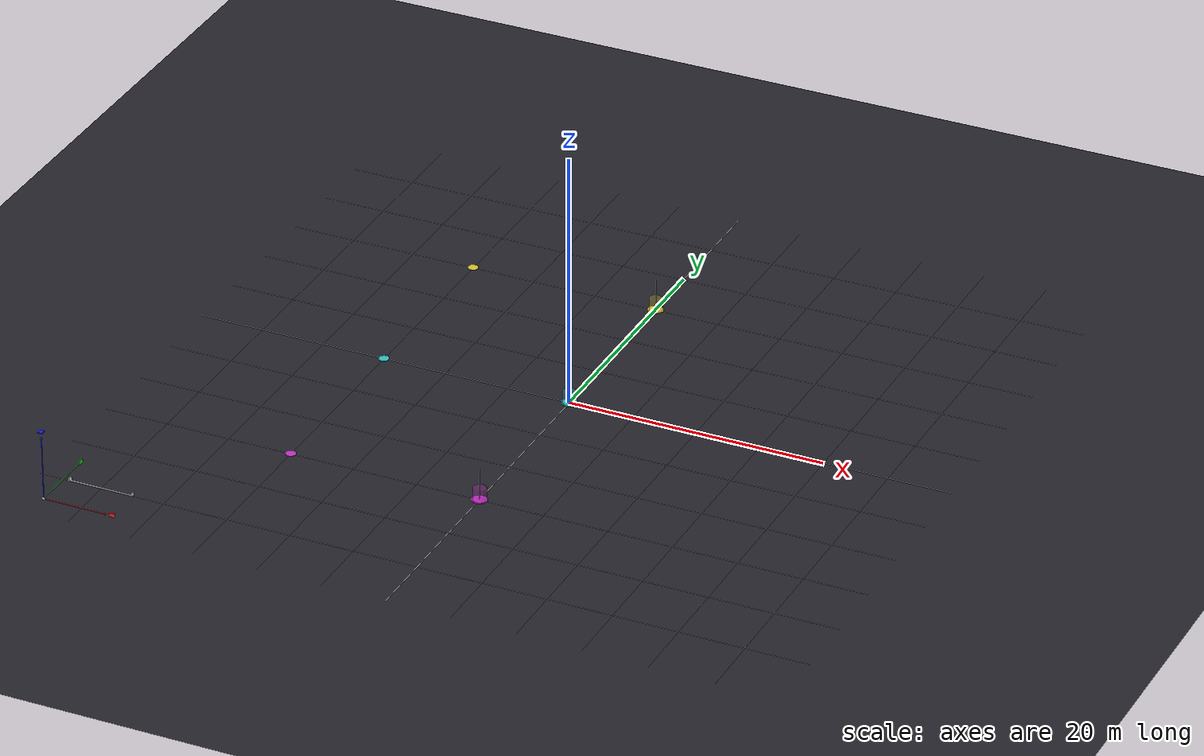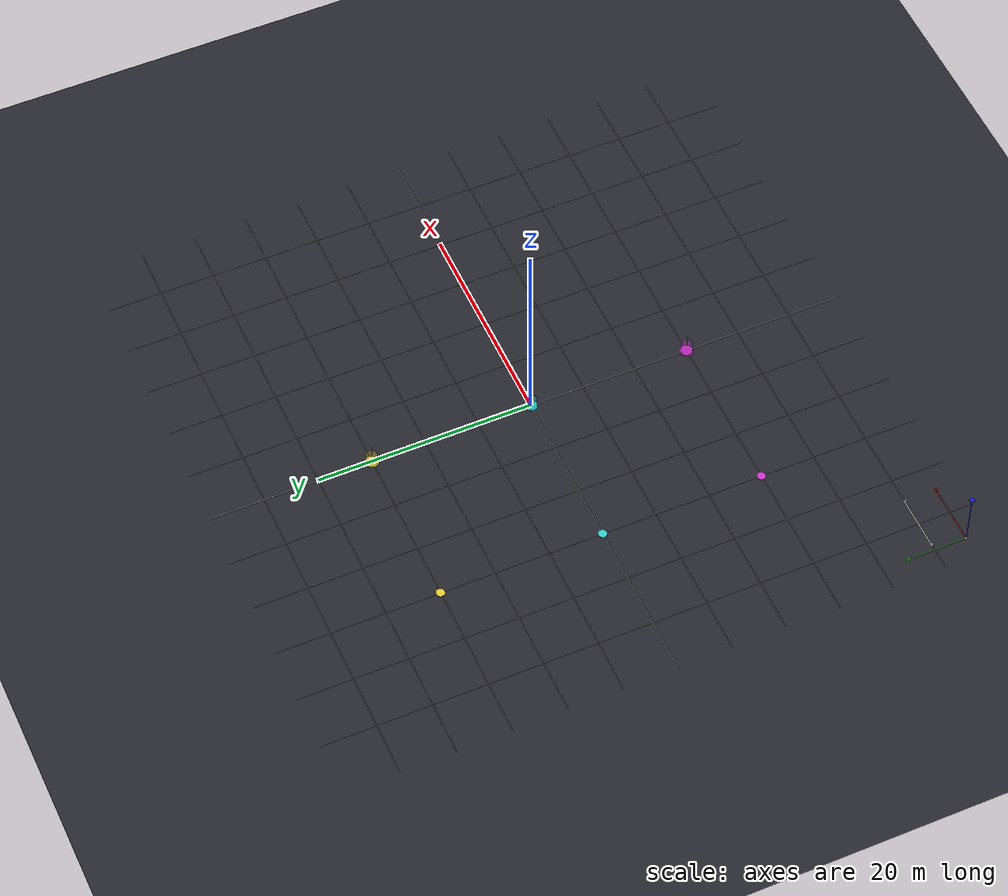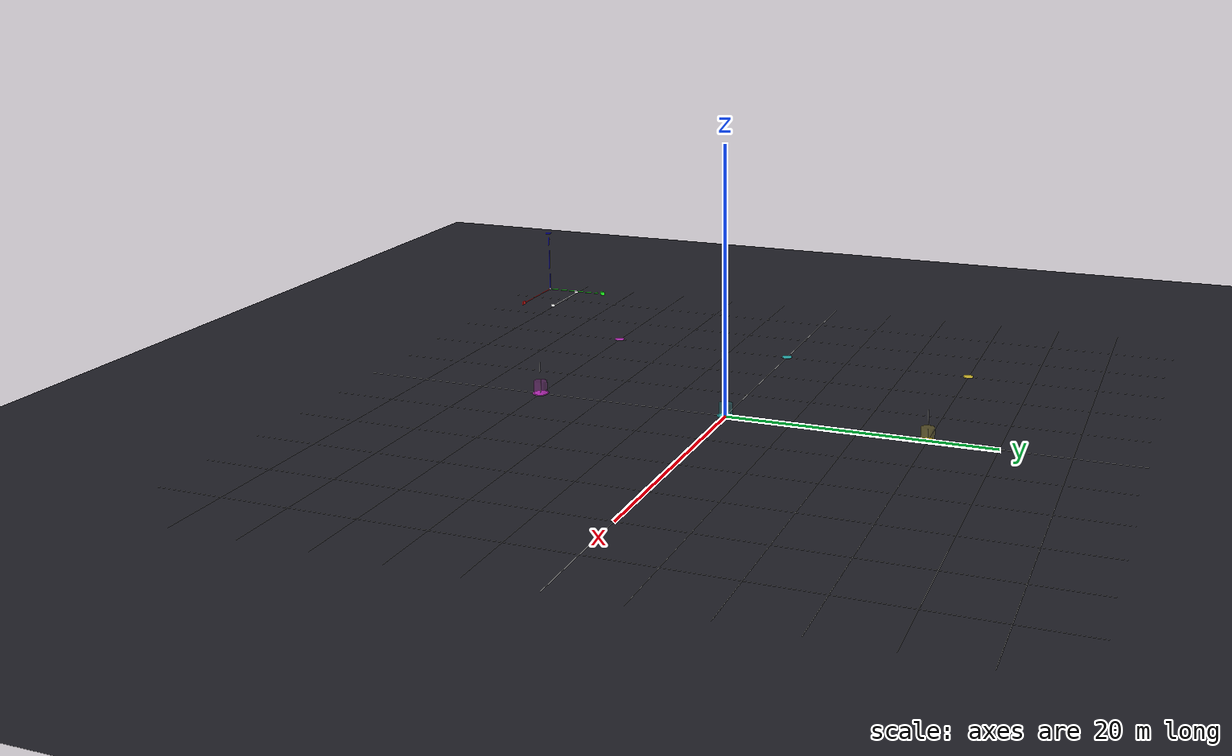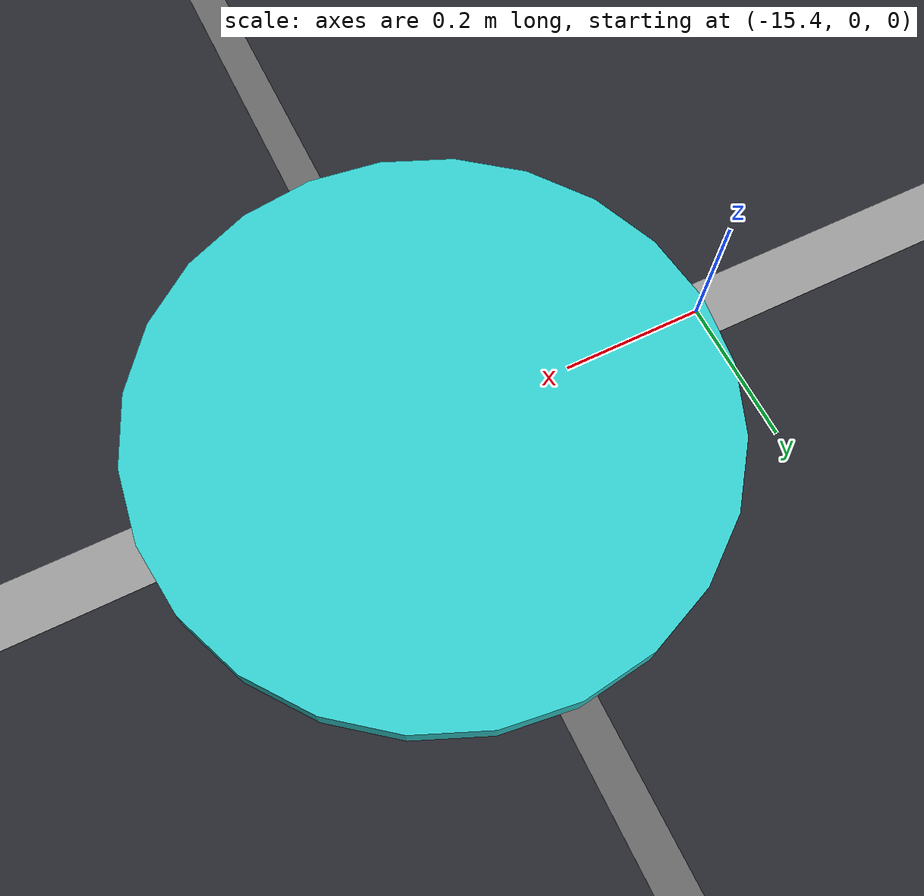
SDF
<sdf version="1.6">
 <world name="crazyflie_arena">
  <physics type="ode">
   <max_step_size>0.001</max_step_size>
   <real_time_factor>1.0</real_time_factor>
   <real_time_update_rate>1000</real_time_update_rate>
   <ode>
    <solver><type>quick</type><iters>50</iters><sor>1.3</sor></solver>
    <constraints>
     <cfm>0.0</cfm>
     <erp>0.2</erp>
     <contact_max_correcting_vel>100</contact_max_correcting_vel>
     <contact_surface_layer>0.001</contact_surface_layer>
    </constraints>
   </ode>
  </physics>
  <plugin name="gazebo_ros_init" filename="libgazebo_ros_init.so"><ros><namespace>/</namespace></ros></plugin>
  <plugin name="gazebo_ros_properties" filename="libgazebo_ros_properties.so">
   <ros><namespace>/</namespace></ros>
  </plugin>
  <light type="directional" name="sun">
   <pose>0 0 50 0 0 0</pose>
   <diffuse>0.9 0.9 0.9 1</diffuse>
   <specular>0.3 0.3 0.3 1</specular>
   <direction>0.3 0.3 -0.9</direction>
  </light>
  <light type="directional" name="fill_light">
   <cast_shadows>false</cast_shadows>
   <pose>0 0 30 0 0 0</pose>
   <diffuse>0.4 0.4 0.5 1</diffuse>
   <specular>0.1 0.1 0.1 1</specular>
   <direction>-0.5 -0.5 -0.7</direction>
  </light>
  <include><uri>model://grid_floor</uri></include>
  <include><uri>model://coordinate_axes</uri><pose>-28 -28 0 0 0 0</pose></include>
  <model name="wp_g0_start">
   <pose>-15 -15 0 0 0 0</pose>
   <static>true</static>
   <link name="link">
    <visual name="ring">
     <pose>0 0 0.02 0 0 0</pose>
     <geometry><cylinder><radius>0.4</radius><length>0.04</length></cylinder></geometry>
     <material><ambient>0.8 0.2 0.8 1</ambient><diffuse>0.8 0.2 0.8 1</diffuse></material>
    </visual>
   </link>
  </model>
  <model name="wp_g0_target">
   <pose>0 -15 0 0 0 0</pose>
   <static>true</static>
   <link name="link">
    <visual name="zone">
     <pose>0 0 0.5 0 0 0</pose>
     <geometry><cylinder><radius>0.5</radius><length>1.0</length></cylinder></geometry>
     <material><ambient>0.8 0.2 0.8 0.3</ambient><diffuse>0.8 0.2 0.8 0.3</diffuse></material>
     <transparency>0.7</transparency>
    </visual>
    <visual name="ring">
     <pose>0 0 0.02 0 0 0</pose>
     <geometry><cylinder><radius>0.6</radius><length>0.04</length></cylinder></geometry>
     <material><ambient>0.8 0.2 0.8 1</ambient><diffuse>0.8 0.2 0.8 1</diffuse></material>
    </visual>
    <visual name="pole">
     <pose>0 0 1.25 0 0 0</pose>
     <geometry><cylinder><radius>0.02</radius><length>2.5</length></cylinder></geometry>
     <material><ambient>0.6 0.6 0.6 1</ambient><diffuse>0.6 0.6 0.6 1</diffuse></material>
    </visual>
   </link>
  </model>
  <model name="wp_g1_start">
   <pose>-15 0 0 0 0 0</pose>
   <static>true</static>
   <link name="link">
    <visual name="ring">
     <pose>0 0 0.02 0 0 0</pose>
     <geometry><cylinder><radius>0.4</radius><length>0.04</length></cylinder></geometry>
     <material><ambient>0.2 0.8 0.8 1</ambient><diffuse>0.2 0.8 0.8 1</diffuse></material>
    </visual>
   </link>
  </model>
  <model name="wp_g1_target">
   <static>true</static>
   <link name="link">
    <visual name="zone">
     <pose>0 0 0.5 0 0 0</pose>
     <geometry><cylinder><radius>0.5</radius><length>1.0</length></cylinder></geometry>
     <material><ambient>0.2 0.8 0.8 0.3</ambient><diffuse>0.2 0.8 0.8 0.3</diffuse></material>
     <transparency>0.7</transparency>
    </visual>
    <visual name="ring">
     <pose>0 0 0.02 0 0 0</pose>
     <geometry><cylinder><radius>0.6</radius><length>0.04</length></cylinder></geometry>
     <material><ambient>0.2 0.8 0.8 1</ambient><diffuse>0.2 0.8 0.8 1</diffuse></material>
    </visual>
    <visual name="pole">
     <pose>0 0 1.25 0 0 0</pose>
     <geometry><cylinder><radius>0.02</radius><length>2.5</length></cylinder></geometry>
     <material><ambient>0.6 0.6 0.6 1</ambient><diffuse>0.6 0.6 0.6 1</diffuse></material>
    </visual>
   </link>
  </model>
  <model name="wp_g2_start">
   <pose>-15 15 0 0 0 0</pose>
   <static>true</static>
   <link name="link">
    <visual name="ring">
     <pose>0 0 0.02 0 0 0</pose>
     <geometry><cylinder><radius>0.4</radius><length>0.04</length></cylinder></geometry>
     <material><ambient>0.9 0.8 0.2 1</ambient><diffuse>0.9 0.8 0.2 1</diffuse></material>
    </visual>
   </link>
  </model>
  <model name="wp_g2_target">
   <pose>0 15 0 0 0 0</pose>
   <static>true</static>
   <link name="link">
    <visual name="zone">
     <pose>0 0 0.5 0 0 0</pose>
     <geometry><cylinder><radius>0.5</radius><length>1.0</length></cylinder></geometry>
     <material><ambient>0.9 0.8 0.2 0.3</ambient><diffuse>0.9 0.8 0.2 0.3</diffuse></material>
     <transparency>0.7</transparency>
    </visual>
    <visual name="ring">
     <pose>0 0 0.02 0 0 0</pose>
     <geometry><cylinder><radius>0.6</radius><length>0.04</length></cylinder></geometry>
     <material><ambient>0.9 0.8 0.2 1</ambient><diffuse>0.9 0.8 0.2 1</diffuse></material>
    </visual>
    <visual name="pole">
     <pose>0 0 1.25 0 0 0</pose>
     <geometry><cylinder><radius>0.02</radius><length>2.5</length></cylinder></geometry>
     <material><ambient>0.6 0.6 0.6 1</ambient><diffuse>0.6 0.6 0.6 1</diffuse></material>
    </visual>
   </link>
  </model>
  <model name="scale_bar">
   <pose>-25 -25 0.01 0 0 0</pose>
   <static>true</static>
   <link name="link">
    <visual name="bar">
     <geometry><box><size>5 0.1 0.02</size></box></geometry>
     <material><ambient>1 1 1 1</ambient><diffuse>1 1 1 1</diffuse></material>
    </visual>
    <visual name="tick_left">
     <pose>-2.5 0 0.1 0 0 0</pose>
     <geometry><box><size>0.05 0.3 0.2</size></box></geometry>
     <material><ambient>1 1 1 1</ambient><diffuse>1 1 1 1</diffuse></material>
    </visual>
    <visual name="tick_right">
     <pose>2.5 0 0.1 0 0 0</pose>
     <geometry><box><size>0.05 0.3 0.2</size></box></geometry>
     <material><ambient>1 1 1 1</ambient><diffuse>1 1 1 1</diffuse></material>
    </visual>
   </link>
  </model>
  <scene>
   <ambient>0.6 0.6 0.6 1</ambient>
   <background>0.2 0.2 0.25 1</background>
   <shadows>true</shadows>
   <grid>false</grid>
  </scene>
 </world>
</sdf>

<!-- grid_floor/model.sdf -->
<sdf version="1.6">
  <!--
    Grid Floor for Formation Control Arena
    50m x 50m area with visual grid pattern
  -->
  <model name="grid_floor">
    <static>true</static>

    <link name="floor_link">
      <!-- Ground plane collision -->
      <collision name="collision">
        <geometry>
          <plane>
            <normal>0 0 1</normal>
            <size>60 60</size>
          </plane>
        </geometry>
        <surface>
          <friction>
            <ode>
              <mu>100</mu>
              <mu2>50</mu2>
            </ode>
          </friction>
        </surface>
      </collision>

      <!-- Main floor visual (dark gray) -->
      <visual name="floor_visual">
        <geometry>
          <plane>
            <normal>0 0 1</normal>
            <size>60 60</size>
          </plane>
        </geometry>
        <material>
          <ambient>0.15 0.15 0.18 1</ambient>
          <diffuse>0.15 0.15 0.18 1</diffuse>
          <specular>0.1 0.1 0.1 1</specular>
        </material>
      </visual>
    </link>

    <!-- Grid lines (every 5m - major, every 1m - minor) -->
    <!-- X-axis lines (horizontal) -->
    <link name="grid_x_major">
      <pose>0 0 0.001 0 0 0</pose>
      <visual name="line_x_n25">
        <pose>0 -25 0 0 0 0</pose>
        <geometry><box><size>60 0.05 0.001</size></box></geometry>
        <material><ambient>0.4 0.4 0.4 1</ambient><diffuse>0.4 0.4 0.4 1</diffuse></material>
      </visual>
      <visual name="line_x_n20">
        <pose>0 -20 0 0 0 0</pose>
        <geometry><box><size>60 0.05 0.001</size></box></geometry>
        <material><ambient>0.4 0.4 0.4 1</ambient><diffuse>0.4 0.4 0.4 1</diffuse></material>
      </visual>
      <visual name="line_x_n15">
        <pose>0 -15 0 0 0 0</pose>
        <geometry><box><size>60 0.05 0.001</size></box></geometry>
        <material><ambient>0.4 0.4 0.4 1</ambient><diffuse>0.4 0.4 0.4 1</diffuse></material>
      </visual>
      <visual name="line_x_n10">
        <pose>0 -10 0 0 0 0</pose>
        <geometry><box><size>60 0.05 0.001</size></box></geometry>
        <material><ambient>0.4 0.4 0.4 1</ambient><diffuse>0.4 0.4 0.4 1</diffuse></material>
      </visual>
      <visual name="line_x_n5">
        <pose>0 -5 0 0 0 0</pose>
        <geometry><box><size>60 0.05 0.001</size></box></geometry>
        <material><ambient>0.4 0.4 0.4 1</ambient><diffuse>0.4 0.4 0.4 1</diffuse></material>
      </visual>
      <visual name="line_x_0">
        <pose>0 0 0 0 0 0</pose>
        <geometry><box><size>60 0.08 0.001</size></box></geometry>
        <material><ambient>0.6 0.6 0.6 1</ambient><diffuse>0.6 0.6 0.6 1</diffuse></material>
      </visual>
      <visual name="line_x_5">
        <pose>0 5 0 0 0 0</pose>
        <geometry><box><size>60 0.05 0.001</size></box></geometry>
        <material><ambient>0.4 0.4 0.4 1</ambient><diffuse>0.4 0.4 0.4 1</diffuse></material>
      </visual>
      <visual name="line_x_10">
        <pose>0 10 0 0 0 0</pose>
        <geometry><box><size>60 0.05 0.001</size></box></geometry>
        <material><ambient>0.4 0.4 0.4 1</ambient><diffuse>0.4 0.4 0.4 1</diffuse></material>
      </visual>
      <visual name="line_x_15">
        <pose>0 15 0 0 0 0</pose>
        <geometry><box><size>60 0.05 0.001</size></box></geometry>
        <material><ambient>0.4 0.4 0.4 1</ambient><diffuse>0.4 0.4 0.4 1</diffuse></material>
      </visual>
      <visual name="line_x_20">
        <pose>0 20 0 0 0 0</pose>
        <geometry><box><size>60 0.05 0.001</size></box></geometry>
        <material><ambient>0.4 0.4 0.4 1</ambient><diffuse>0.4 0.4 0.4 1</diffuse></material>
      </visual>
      <visual name="line_x_25">
        <pose>0 25 0 0 0 0</pose>
        <geometry><box><size>60 0.05 0.001</size></box></geometry>
        <material><ambient>0.4 0.4 0.4 1</ambient><diffuse>0.4 0.4 0.4 1</diffuse></material>
      </visual>
    </link>

    <!-- Y-axis lines (vertical) -->
    <link name="grid_y_major">
      <pose>0 0 0.001 0 0 0</pose>
      <visual name="line_y_n25">
        <pose>-25 0 0 0 0 0</pose>
        <geometry><box><size>0.05 60 0.001</size></box></geometry>
        <material><ambient>0.4 0.4 0.4 1</ambient><diffuse>0.4 0.4 0.4 1</diffuse></material>
      </visual>
      <visual name="line_y_n20">
        <pose>-20 0 0 0 0 0</pose>
        <geometry><box><size>0.05 60 0.001</size></box></geometry>
        <material><ambient>0.4 0.4 0.4 1</ambient><diffuse>0.4 0.4 0.4 1</diffuse></material>
      </visual>
      <visual name="line_y_n15">
        <pose>-15 0 0 0 0 0</pose>
        <geometry><box><size>0.05 60 0.001</size></box></geometry>
        <material><ambient>0.4 0.4 0.4 1</ambient><diffuse>0.4 0.4 0.4 1</diffuse></material>
      </visual>
      <visual name="line_y_n10">
        <pose>-10 0 0 0 0 0</pose>
        <geometry><box><size>0.05 60 0.001</size></box></geometry>
        <material><ambient>0.4 0.4 0.4 1</ambient><diffuse>0.4 0.4 0.4 1</diffuse></material>
      </visual>
      <visual name="line_y_n5">
        <pose>-5 0 0 0 0 0</pose>
        <geometry><box><size>0.05 60 0.001</size></box></geometry>
        <material><ambient>0.4 0.4 0.4 1</ambient><diffuse>0.4 0.4 0.4 1</diffuse></material>
      </visual>
      <visual name="line_y_0">
        <pose>0 0 0 0 0 0</pose>
        <geometry><box><size>0.08 60 0.001</size></box></geometry>
        <material><ambient>0.6 0.6 0.6 1</ambient><diffuse>0.6 0.6 0.6 1</diffuse></material>
      </visual>
      <visual name="line_y_5">
        <pose>5 0 0 0 0 0</pose>
        <geometry><box><size>0.05 60 0.001</size></box></geometry>
        <material><ambient>0.4 0.4 0.4 1</ambient><diffuse>0.4 0.4 0.4 1</diffuse></material>
      </visual>
      <visual name="line_y_10">
        <pose>10 0 0 0 0 0</pose>
        <geometry><box><size>0.05 60 0.001</size></box></geometry>
        <material><ambient>0.4 0.4 0.4 1</ambient><diffuse>0.4 0.4 0.4 1</diffuse></material>
      </visual>
      <visual name="line_y_15">
        <pose>15 0 0 0 0 0</pose>
        <geometry><box><size>0.05 60 0.001</size></box></geometry>
        <material><ambient>0.4 0.4 0.4 1</ambient><diffuse>0.4 0.4 0.4 1</diffuse></material>
      </visual>
      <visual name="line_y_20">
        <pose>20 0 0 0 0 0</pose>
        <geometry><box><size>0.05 60 0.001</size></box></geometry>
        <material><ambient>0.4 0.4 0.4 1</ambient><diffuse>0.4 0.4 0.4 1</diffuse></material>
      </visual>
      <visual name="line_y_25">
        <pose>25 0 0 0 0 0</pose>
        <geometry><box><size>0.05 60 0.001</size></box></geometry>
        <material><ambient>0.4 0.4 0.4 1</ambient><diffuse>0.4 0.4 0.4 1</diffuse></material>
      </visual>
    </link>

  </model>
</sdf>

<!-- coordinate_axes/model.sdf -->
<sdf version="1.6">
  <!--
    Coordinate Axes for Formation Control Arena
    X=Red, Y=Green, Z=Blue (RGB convention)
    5m long arrows with labels
  -->
  <model name="coordinate_axes">
    <static>true</static>

    <link name="axes_link">
      <!-- X Axis (Red) -->
      <visual name="x_axis_shaft">
        <pose>2.5 0 0.02 0 1.5708 0</pose>
        <geometry>
          <cylinder>
            <radius>0.03</radius>
            <length>5.0</length>
          </cylinder>
        </geometry>
        <material>
          <ambient>0.9 0.1 0.1 1</ambient>
          <diffuse>0.9 0.1 0.1 1</diffuse>
        </material>
      </visual>
      <visual name="x_axis_tip">
        <pose>5.0 0 0.02 0 1.5708 0</pose>
        <geometry>
          <cone>
            <radius>0.08</radius>
            <length>0.2</length>
          </cone>
        </geometry>
        <material>
          <ambient>0.9 0.1 0.1 1</ambient>
          <diffuse>0.9 0.1 0.1 1</diffuse>
        </material>
      </visual>
      <visual name="x_label">
        <pose>5.5 0 0.02 0 0 0</pose>
        <geometry>
          <box><size>0.4 0.08 0.4</size></box>
        </geometry>
        <material>
          <ambient>0.9 0.1 0.1 1</ambient>
          <diffuse>0.9 0.1 0.1 1</diffuse>
        </material>
      </visual>

      <!-- Y Axis (Green) -->
      <visual name="y_axis_shaft">
        <pose>0 2.5 0.02 1.5708 0 0</pose>
        <geometry>
          <cylinder>
            <radius>0.03</radius>
            <length>5.0</length>
          </cylinder>
        </geometry>
        <material>
          <ambient>0.1 0.9 0.1 1</ambient>
          <diffuse>0.1 0.9 0.1 1</diffuse>
        </material>
      </visual>
      <visual name="y_axis_tip">
        <pose>0 5.0 0.02 -1.5708 0 0</pose>
        <geometry>
          <cone>
            <radius>0.08</radius>
            <length>0.2</length>
          </cone>
        </geometry>
        <material>
          <ambient>0.1 0.9 0.1 1</ambient>
          <diffuse>0.1 0.9 0.1 1</diffuse>
        </material>
      </visual>
      <visual name="y_label">
        <pose>0 5.5 0.02 0 0 0</pose>
        <geometry>
          <box><size>0.08 0.4 0.4</size></box>
        </geometry>
        <material>
          <ambient>0.1 0.9 0.1 1</ambient>
          <diffuse>0.1 0.9 0.1 1</diffuse>
        </material>
      </visual>

      <!-- Z Axis (Blue) -->
      <visual name="z_axis_shaft">
        <pose>0 0 2.5 0 0 0</pose>
        <geometry>
          <cylinder>
            <radius>0.03</radius>
            <length>5.0</length>
          </cylinder>
        </geometry>
        <material>
          <ambient>0.1 0.1 0.9 1</ambient>
          <diffuse>0.1 0.1 0.9 1</diffuse>
        </material>
      </visual>
      <visual name="z_axis_tip">
        <pose>0 0 5.0 0 0 0</pose>
        <geometry>
          <cone>
            <radius>0.08</radius>
            <length>0.2</length>
          </cone>
        </geometry>
        <material>
          <ambient>0.1 0.1 0.9 1</ambient>
          <diffuse>0.1 0.1 0.9 1</diffuse>
        </material>
      </visual>
      <visual name="z_label">
        <pose>0 0 5.5 0 0 0</pose>
        <geometry>
          <box><size>0.4 0.4 0.08</size></box>
        </geometry>
        <material>
          <ambient>0.1 0.1 0.9 1</ambient>
          <diffuse>0.1 0.1 0.9 1</diffuse>
        </material>
      </visual>

      <!-- Origin sphere -->
      <visual name="origin">
        <pose>0 0 0.02 0 0 0</pose>
        <geometry>
          <sphere><radius>0.1</radius></sphere>
        </geometry>
        <material>
          <ambient>0.9 0.9 0.9 1</ambient>
          <diffuse>0.9 0.9 0.9 1</diffuse>
        </material>
      </visual>
    </link>

  </model>
</sdf>
